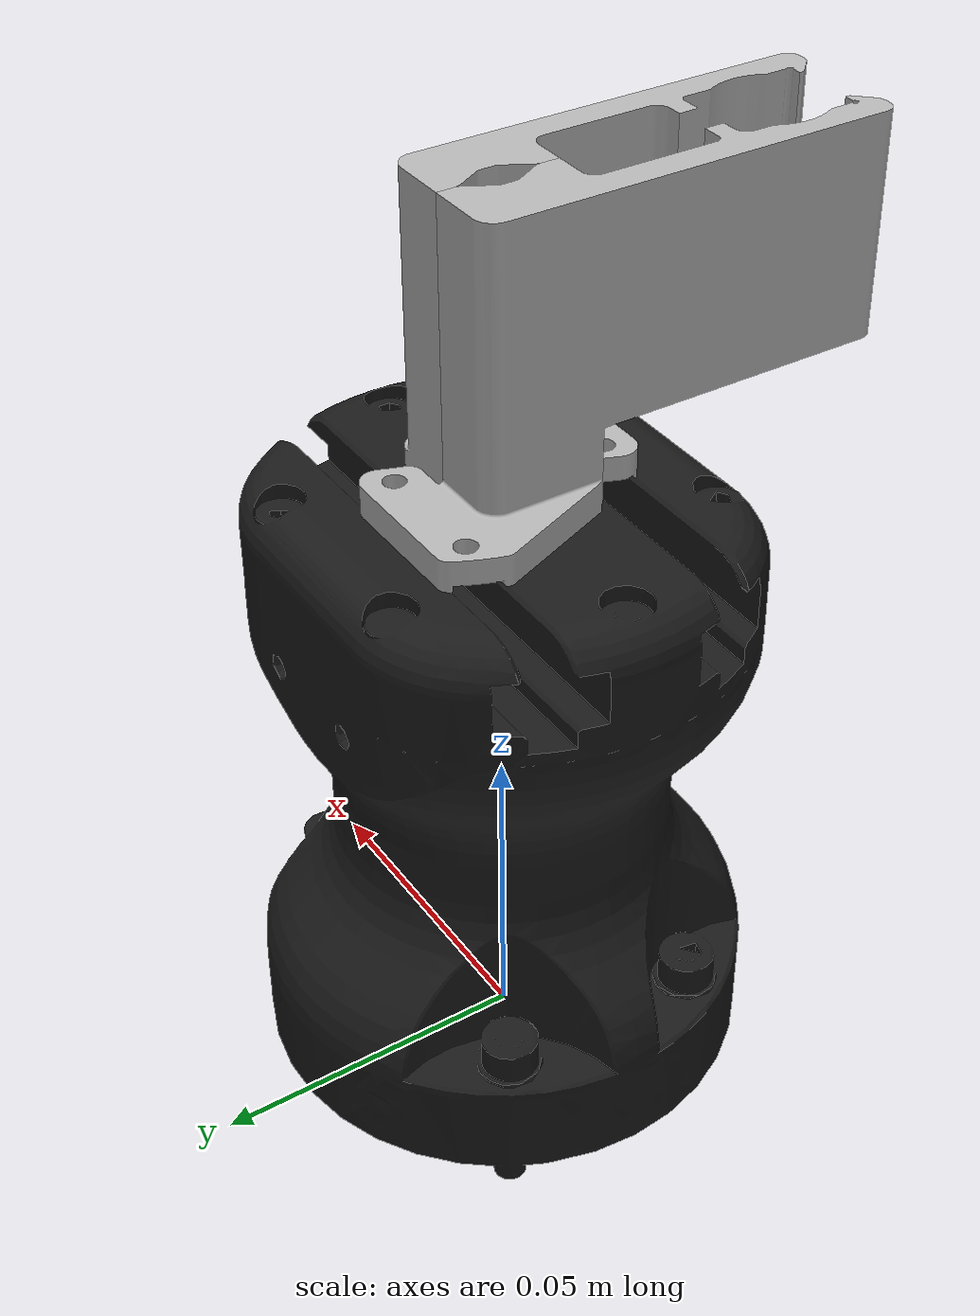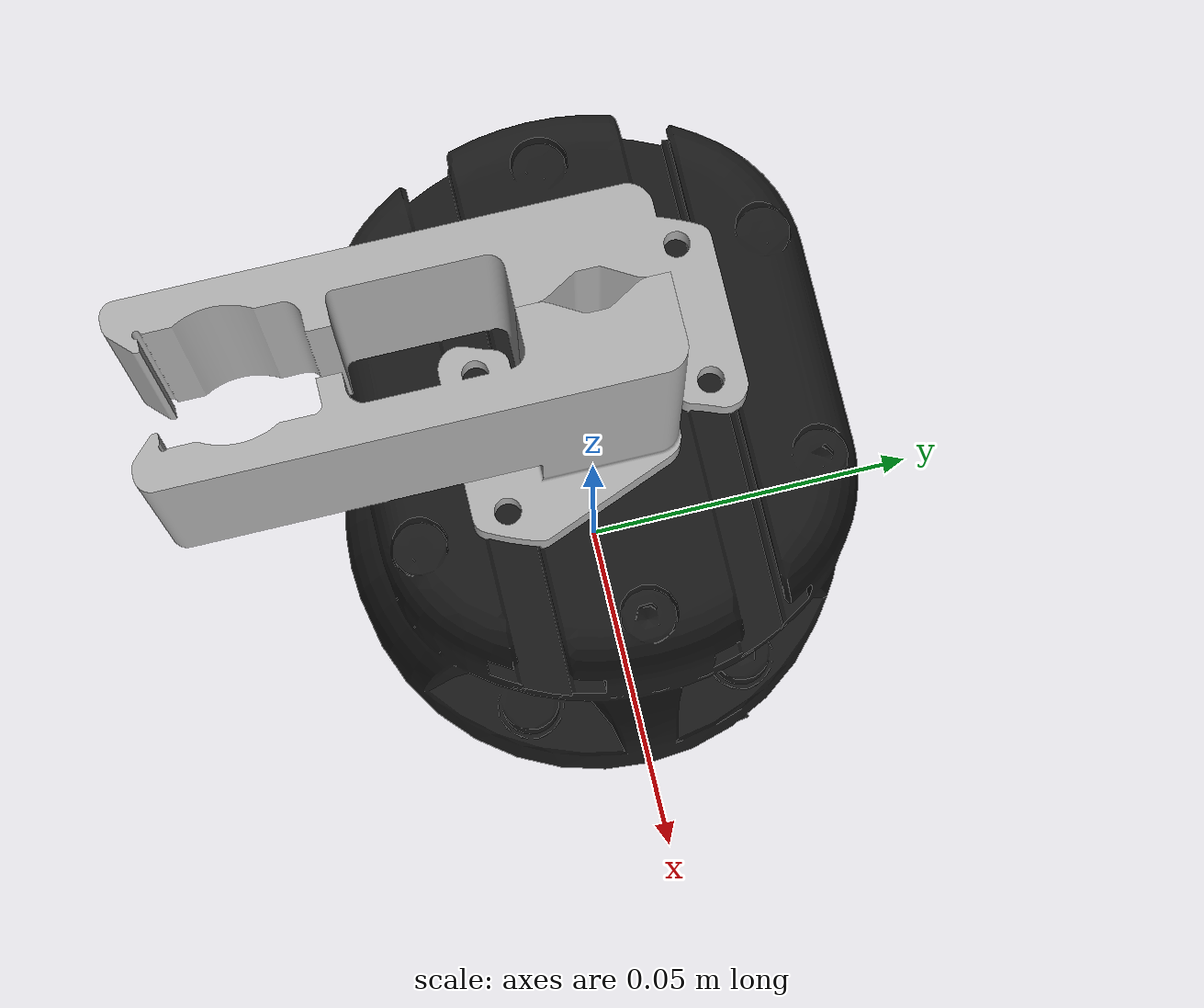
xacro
<?xml version="1.0" encoding="UTF-8"?>
<robot xmlns:xacro="http://wiki.ros.org/xacro" name="schunk_gripper">

  <!-- Use this if parameters are set from the launch file, otherwise delete -->
  <xacro:arg name="prefix" default="" />

  <xacro:arg name="use_mock_hardware" default="false" />
  <xacro:arg name="mock_sensor_commands" default="false" />

  <xacro:include filename="$(find robotiq_description)/urdf/robotiq_hande_macro.urdf.xacro"/>
  <xacro:include filename="$(find robotiq_description)/urdf/robotiq_hande.ros2_control.xacro"/>

  <!-- create link fixed to the "world" -->
  <link name="base_link" />

  <!-- Load robot's macro with parameters -->
  <!-- set prefix if multiple robots are used -->
  <xacro:robotiq_hande prefix="$(arg prefix)" parent="base_link" >
    <origin xyz="0 0 0" rpy="0 0 0" />          <!-- position robot in the world -->
  </xacro:robotiq_hande>

  <xacro:robotiq_hande_ros2_control
    name="robotiq_hande"
    prefix="$(arg prefix)"
    use_mock_hardware="$(arg use_mock_hardware)" />

</robot>

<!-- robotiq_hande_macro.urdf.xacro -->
<robot xmlns:xacro="http://www.ros.org/wiki/xacro" name="gripper_finger">

    <!-- Colour definations-->
    <material name="gray">
      <color rgba="0.7 0.7 0.7 1.0"/>
    </material>
    <material name="dark">
      <color rgba=".1 0.1 0.1 1.0"/>
    </material>

    <!-- Gripper macro hand-e -->
    <xacro:macro name="robotiq_hande" params="prefix parent *origin">
        <link name="${prefix}hand_e_base_link">
            <inertial>
              <origin rpy="0 0 0" xyz="0 0 0.04607"/>
              <mass value="0.86387"/>
              <inertia ixx="1017560E-9" ixy="0" ixz="2235E-9" iyy="1028041E-9" iyz="0" izz="489810E-9"/>
            </inertial>
            <visual>
                <origin rpy="0 0 0" xyz="0 0 0"/>
                <geometry>
                    <mesh filename="package://robotiq_description/meshes/visual/hande/hand-e.dae" scale="1.0 1.0 1.0"/>
                </geometry>
                <material name="dark" />
            </visual>
            <collision>
                <origin rpy="0 0 0" xyz="0 0 0"/>
                <geometry>
                    <mesh filename="package://robotiq_description/meshes/collision/hande/hand-e.stl" scale="1.0 1.0 1.0"/>
                </geometry>
            </collision>
        </link>
        <joint name="${prefix}robotiq_hande_base_joint" type="fixed">
            <parent link="${parent}"/>
            <child link="${prefix}hand_e_base_link"/>
            <xacro:insert_block name="origin"/>
        </joint>

        <!-- Fingers -->
        <link name="${prefix}hande_left_finger">
            <visual>
              <origin rpy="0 0 0" xyz="0 0 0"/>
              <geometry>
                <mesh filename="package://robotiq_description/meshes/visual/hande/left_finger.dae" />
              </geometry>
              <material name="gray">
                <color rgba="0.7 0.7 0.7 1.0"/>
              </material>
            </visual>
            <collision>
              <origin rpy="0 0 0" xyz="0 0 0"/>
              <geometry>
                <mesh filename="package://robotiq_description/meshes/collision/hande/left_finger.stl" />
              </geometry>
            </collision>
          </link>
          <link name="${prefix}hande_right_finger">
            <visual>
              <origin rpy="0 0 0" xyz="0 0 0"/>
              <geometry>
                <mesh filename="package://robotiq_description/meshes/visual/hande/right_finger.dae" />
              </geometry>
              <material name="gray">
                <color rgba="0.7 0.7 0.7 1.0"/>
              </material>
            </visual>
            <collision>
              <origin rpy="0 0 0" xyz="0 0 0"/>
              <geometry>
                <mesh filename="package://robotiq_description/meshes/collision/hande/right_finger.stl" />
              </geometry>
            </collision>
        </link>
        <joint name="${prefix}hande_left_finger_joint" type="prismatic">
            <origin rpy="0 0 0" xyz="0 0 0.099"/>
            <parent link="${prefix}hand_e_base_link"/>
            <child link="${prefix}hande_left_finger"/>
            <axis xyz="-1 0 0"/>
            <limit effort="130" lower="0" upper="0.025" velocity="0.15"/>
          </joint>
        <joint name="${prefix}hande_right_finger_joint" type="prismatic">
            <origin rpy="0 0 0" xyz="0 0 0.099"/>
            <parent link="${prefix}hand_e_base_link"/>
            <child link="${prefix}hande_right_finger"/>
            <axis xyz="1 0 0"/>
            <limit effort="130" lower="0" upper="0.025" velocity="0.15"/>
            <mimic joint="${prefix}hande_left_finger_joint" multiplier="1" offset="0"/>
          </joint>

          <!-- TODO (Manuel) Remove this tmp tcp_link -->
          <link name="$(arg prefix)tcp_link"/>
          <joint name="$(arg prefix)tcp_link_joint" type="fixed">
            <origin xyz="0 0 0.125" rpy="0 0 0"/>
            <parent link="$(arg prefix)hand_e_base_link"/>
            <child link="$(arg prefix)tcp_link"/>
          </joint>

          <!-- TCP Link Tube -->
          <link name="$(arg prefix)tcp_link_tube"/>
          <joint name="$(arg prefix)tcp_joint_tube" type="fixed">
            <origin xyz="0 0 0" rpy="0 0 0"/>
            <parent link="$(arg prefix)tcp_link"/>
            <child link="$(arg prefix)tcp_link_tube"/>
          </joint>

          <!-- TCP Link Rack -->
          <link name="$(arg prefix)tcp_link_rack"/>
          <joint name="$(arg prefix)tcp_joint_rack" type="fixed">
            <origin xyz="0 -0.0 0" rpy="0 0 0"/>
            <parent link="$(arg prefix)tcp_link"/>
            <child link="$(arg prefix)tcp_link_rack"/>
          </joint>
    </xacro:macro>
</robot>
